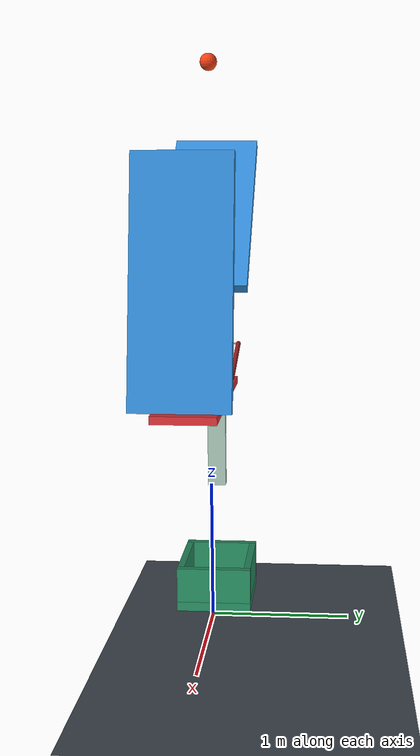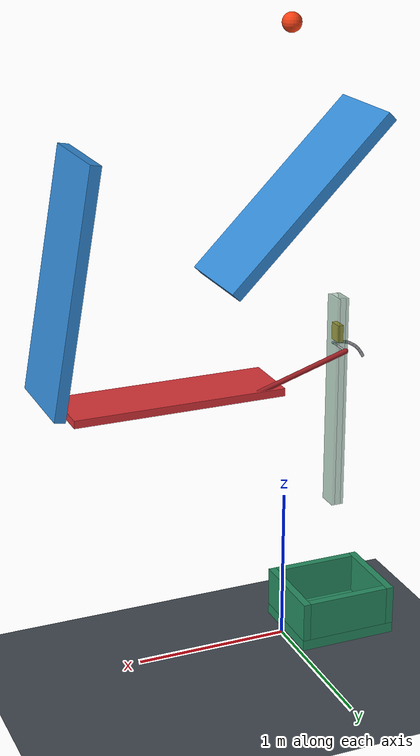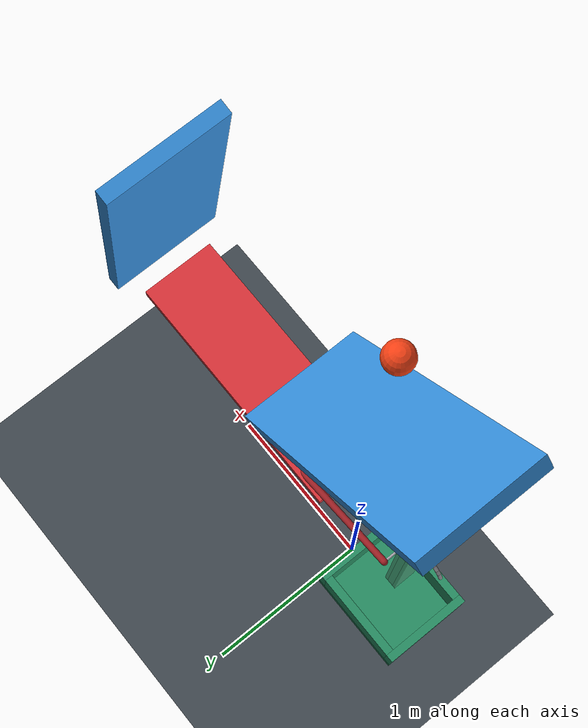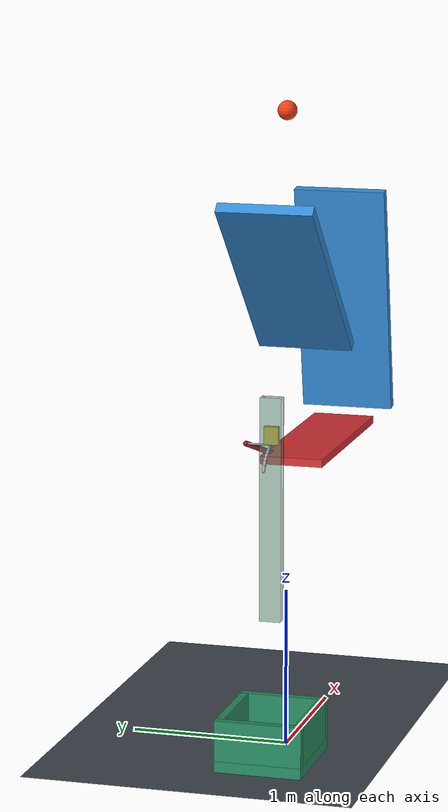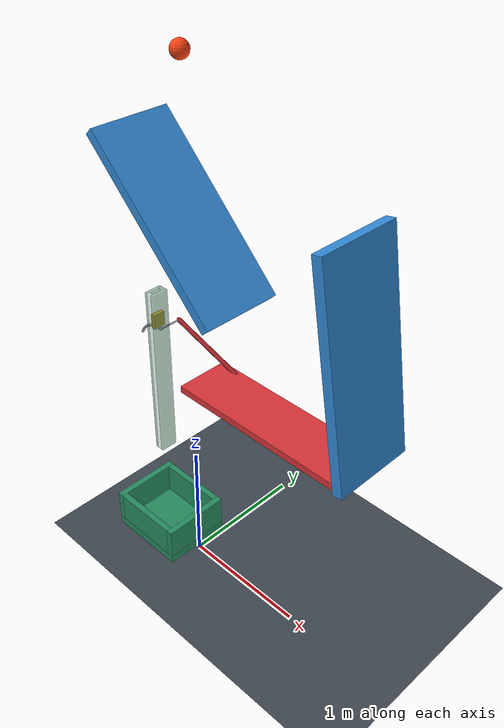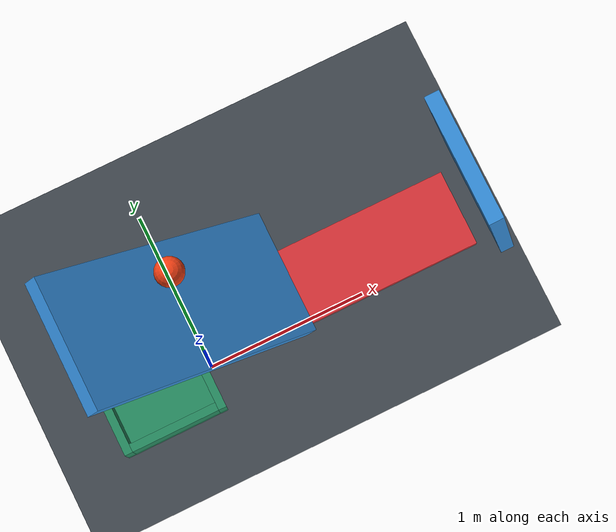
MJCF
<mujoco model="gravity_ricochet_release">
  <compiler angle="degree" autolimits="true"/>
  <option timestep="0.002" gravity="0 0 -9.81" integrator="implicitfast" solver="Newton" iterations="100" cone="elliptic"/>
  <visual>
    <global azimuth="90" elevation="-18"/>
  </visual>

  <worldbody>
    <light name="overhead" pos="0 -3 6" dir="0 0 -1" diffuse="0.9 0.9 0.9"/>
    <camera name="overview" pos="4 -7 3.4" xyaxes="0.868 0.496 0 -0.093 0.163 0.982"/>

    <geom name="floor" type="plane" size="8 8 0.1" rgba="0.25 0.28 0.31 1" condim="6" friction="0.9 0.08 0.04" solref="0.008 1" solimp="0.95 0.99 0.001"/>

    <!-- The ball center starts one metre above wall1's reference surface. -->
    <body name="ball" pos="0 0 4">
      <freejoint name="ball_free"/>
      <geom name="ball_sphere" type="sphere" size="0.06" mass="0.20" rgba="0.95 0.25 0.08 1" condim="6" friction="0.8 0.06 0.04" solref="0.008 1" solimp="0.95 0.99 0.001"/>
    </body>

    <!-- The upper face passes through the body origin and slopes down toward +x. -->
    <body name="wall1" pos="0 0 3" quat="0.923879533 0 0.382683432 0">
      <geom name="wall1_reflector" type="box" pos="0 0 -0.035" size="0.70 0.30 0.035" rgba="0.20 0.55 0.85 1" friction="0 0 0" solref="0.008 1"/>
    </body>

    <!-- This reflector sends the right-moving ball back left and downward. -->
    <body name="wall2" pos="1.4 0 2.6" quat="0.642787610 0 -0.766044443 0">
      <geom name="wall2_reflector" type="box" pos="0 0 -0.035" size="0.75 0.30 0.035" rgba="0.20 0.55 0.85 1" friction="0 0 0" solref="0.008 1"/>
    </body>

    <!-- Positive hinge rotation lowers the strike plate; 75 degrees is its lower stop. -->
    <!-- A sector-shaped cam holds the guided block until the last part of that stroke. -->
    <body name="target" pos="-0.35 0 1.8">
      <inertial pos="0 0 0" mass="0.8" diaginertia="0.025 0.14 0.14"/>
      <joint name="target_hinge" type="hinge" axis="0 1 0" range="0 75" damping="0.01" frictionloss="0.025" solreflimit="0.004 1" solimplimit="0.95 0.99 0.001"/>

      <geom name="target_plate" type="box" pos="1.125 0 0" size="0.675 0.20 0.025" mass="0" rgba="0.85 0.20 0.22 1" friction="0.15 0.005 0.002" solref="0.008 1" solimp="0.95 0.99 0.001"/>
      <geom name="target_side_rail" type="capsule" fromto="0.027835 0.17 0.198054 0.65 0.17 0" size="0.017" mass="0" rgba="0.60 0.12 0.14 1" friction="0.02 0 0" solref="0.008 1"/>
      <geom name="target_cam_connector" type="capsule" fromto="0.027835 0 0.198054 0.027835 0.17 0.198054" size="0.006" mass="0" rgba="0.65 0.65 0.68 1" friction="0.02 0 0" solref="0.008 1"/>

      <geom name="target_cam_01" type="capsule" fromto="-0.182709 0 0.081347 -0.165808 0 0.111839" size="0.010" mass="0" rgba="0.65 0.65 0.68 1" friction="0.02 0 0" solref="0.008 1"/>
      <geom name="target_cam_02" type="capsule" fromto="-0.165808 0 0.111839 -0.148629 0 0.133826" size="0.010" mass="0" rgba="0.65 0.65 0.68 1" friction="0.02 0 0" solref="0.008 1"/>
      <geom name="target_cam_03" type="capsule" fromto="-0.148629 0 0.133826 -0.128558 0 0.153209" size="0.010" mass="0" rgba="0.65 0.65 0.68 1" friction="0.02 0 0" solref="0.008 1"/>
      <geom name="target_cam_04" type="capsule" fromto="-0.128558 0 0.153209 -0.105984 0 0.169610" size="0.010" mass="0" rgba="0.65 0.65 0.68 1" friction="0.02 0 0" solref="0.008 1"/>
      <geom name="target_cam_05" type="capsule" fromto="-0.105984 0 0.169610 -0.081347 0 0.182709" size="0.010" mass="0" rgba="0.65 0.65 0.68 1" friction="0.02 0 0" solref="0.008 1"/>
      <geom name="target_cam_06" type="capsule" fromto="-0.081347 0 0.182709 -0.055128 0 0.192252" size="0.010" mass="0" rgba="0.65 0.65 0.68 1" friction="0.02 0 0" solref="0.008 1"/>
      <geom name="target_cam_07" type="capsule" fromto="-0.055128 0 0.192252 -0.027835 0 0.198054" size="0.010" mass="0" rgba="0.65 0.65 0.68 1" friction="0.02 0 0" solref="0.008 1"/>
      <geom name="target_cam_08" type="capsule" fromto="-0.027835 0 0.198054 0 0 0.2" size="0.010" mass="0" rgba="0.65 0.65 0.68 1" friction="0.02 0 0" solref="0.008 1"/>
      <geom name="target_cam_09" type="capsule" fromto="0 0 0.2 0.027835 0 0.198054" size="0.010" mass="0" rgba="0.65 0.65 0.68 1" friction="0.02 0 0" solref="0.008 1"/>
    </body>

    <body name="block" pos="-0.35 0 2.065">
      <freejoint name="block_free"/>
      <geom name="block_payload" type="box" size="0.018 0.045 0.055" mass="0.08" rgba="0.95 0.75 0.12 1" condim="6" friction="0.4 0.01 0.005" solref="0.008 1" solimp="0.95 0.99 0.001"/>
    </body>

    <!-- The upper guide is part of the fixed bin assembly. -->
    <body name="bin" pos="-0.35 0 0">
      <geom name="bin_bottom" type="box" pos="0 0 0.035" size="0.325 0.275 0.035" rgba="0.15 0.55 0.38 1" condim="6" friction="0.8 0.05 0.02" solref="0.008 1"/>
      <geom name="bin_left" type="box" pos="-0.30 0 0.20" size="0.025 0.275 0.13" rgba="0.15 0.55 0.38 1" friction="0.5 0.01 0.005" solref="0.008 1"/>
      <geom name="bin_right" type="box" pos="0.30 0 0.20" size="0.025 0.275 0.13" rgba="0.15 0.55 0.38 1" friction="0.5 0.01 0.005" solref="0.008 1"/>
      <geom name="bin_front" type="box" pos="0 -0.25 0.20" size="0.275 0.025 0.13" rgba="0.15 0.55 0.38 1" friction="0.5 0.01 0.005" solref="0.008 1"/>
      <geom name="bin_back" type="box" pos="0 0.25 0.20" size="0.275 0.025 0.13" rgba="0.15 0.55 0.38 1" friction="0.5 0.01 0.005" solref="0.008 1"/>

      <geom name="bin_guide_left" type="box" pos="-0.0295 0 1.60" size="0.010 0.0665 0.70" rgba="0.35 0.55 0.45 0.55" friction="0.025 0 0" solref="0.008 1"/>
      <geom name="bin_guide_right" type="box" pos="0.0295 0 1.60" size="0.010 0.0665 0.70" rgba="0.35 0.55 0.45 0.55" friction="0.025 0 0" solref="0.008 1"/>
      <geom name="bin_guide_front" type="box" pos="0 -0.0565 1.60" size="0.0195 0.010 0.70" rgba="0.35 0.55 0.45 0.35" friction="0.025 0 0" solref="0.008 1"/>
      <geom name="bin_guide_back" type="box" pos="0 0.0565 1.60" size="0.0195 0.010 0.70" rgba="0.35 0.55 0.45 0.55" friction="0.025 0 0" solref="0.008 1"/>
    </body>
  </worldbody>

  <contact>
    <!-- Low-damping, frictionless contacts are used only for the two ricochets. -->
    <pair name="ricochet_wall1" geom1="ball_sphere" geom2="wall1_reflector" condim="1" friction="0 0 0 0 0" solref="-100000 -10" solimp="0.99 0.99 0.001"/>
    <pair name="ricochet_wall2" geom1="ball_sphere" geom2="wall2_reflector" condim="1" friction="0 0 0 0 0" solref="-100000 -10" solimp="0.99 0.99 0.001"/>
    <!-- Clearance slots in the guide allow the release cam to turn through it. -->
    <exclude name="cam_guide_clearance" body1="target" body2="bin"/>
  </contact>

  <keyframe>
    <key name="start" qpos="0 0 4 1 0 0 0 0 -0.35 0 2.065 1 0 0 0"/>
  </keyframe>
</mujoco>
